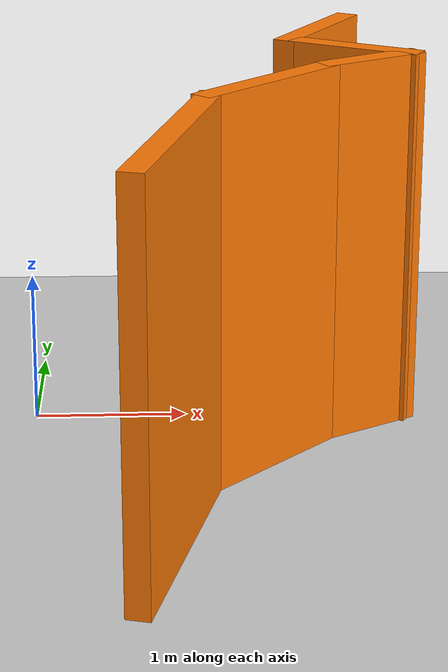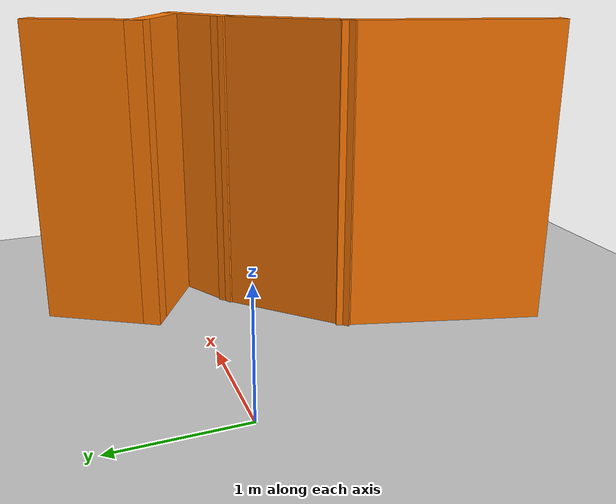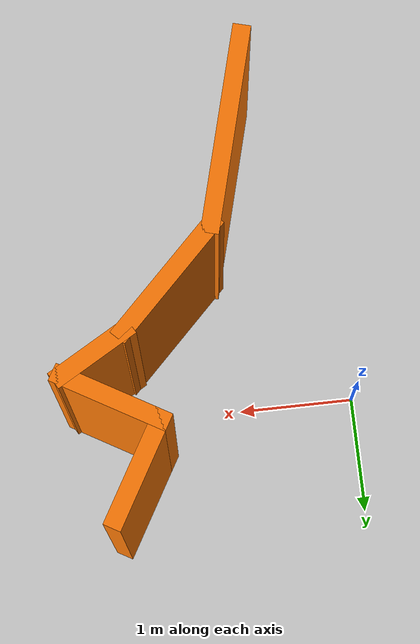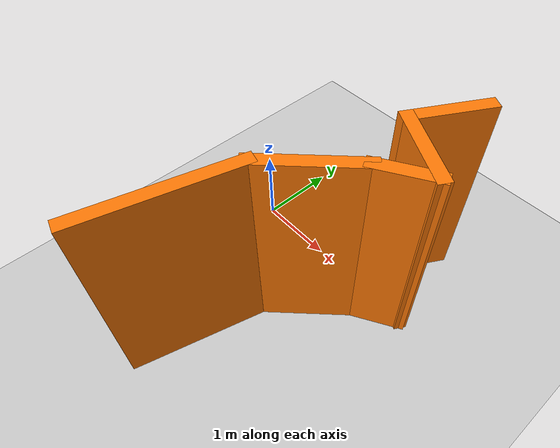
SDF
<sdf version="1.7">
 <world name="default">
  <light name="sun" type="directional">
   <pose>0 0 10 0 -0 0</pose>
   <diffuse>0.8 0.8 0.8 1</diffuse>
   <specular>0.2 0.2 0.2 1</specular>
   <attenuation>
    <range>1000</range>
    <constant>0.9</constant>
    <linear>0.01</linear>
    <quadratic>0.001</quadratic>
   </attenuation>
   <direction>-0.5 0.1 -0.9</direction>
   <spot><inner_angle>0</inner_angle><outer_angle>0</outer_angle><falloff>0</falloff></spot>
  </light>
  <model name="ground_plane">
   <static>1</static>
   <link name="link">
    <collision name="collision">
     <geometry><plane><normal>0 0 1</normal><size>100 100</size></plane></geometry>
     <surface>
      <contact><collide_bitmask>65535</collide_bitmask></contact>
      <friction><ode><mu>100</mu><mu2>50</mu2></ode></friction>
     </surface>
    </collision>
    <visual name="visual">
     <cast_shadows>0</cast_shadows>
     <geometry><plane><normal>0 0 1</normal><size>100 100</size></plane></geometry>
     <material>
      <script><uri>file://media/materials/scripts/gazebo.material</uri><name>Gazebo/Grey</name></script>
     </material>
    </visual>
   </link>
  </model>
  <gravity>0 0 -9.8</gravity>
  <magnetic_field>6e-06 2.3e-05 -4.2e-05</magnetic_field>
  <atmosphere type="adiabatic"/>
  <physics type="ode">
   <max_step_size>0.001</max_step_size>
   <real_time_factor>1</real_time_factor>
   <real_time_update_rate>1000</real_time_update_rate>
  </physics>
  <scene><ambient>0.4 0.4 0.4 1</ambient><background>0.7 0.7 0.7 1</background><shadows>1</shadows></scene>
  <spherical_coordinates>
   <surface_model>EARTH_WGS84</surface_model>
   <latitude_deg>0</latitude_deg>
   <longitude_deg>0</longitude_deg>
   <elevation>0</elevation>
   <heading_deg>0</heading_deg>
  </spherical_coordinates>
  <model name="map">
   <pose>1.267 -0.792492 0 0 -0 0</pose>
   <link name="Wall_1">
    <collision name="Wall_1_Collision">
     <geometry><box><size>1.75 0.15 2.5</size></box></geometry>
     <pose>0 0 1.25 0 -0 0</pose>
    </collision>
    <visual name="Wall_1_Visual">
     <pose>0 0 1.25 0 -0 0</pose>
     <geometry><box><size>1.75 0.15 2.5</size></box></geometry>
     <material>
      <script><uri>file://media/materials/scripts/gazebo.material</uri><name>Gazebo/Grey</name></script>
      <ambient>0.996078 0.47451 0.0196078 1</ambient>
     </material>
     <meta><layer>0</layer></meta>
    </visual>
    <pose>-0.339942 -1.12477 0 0 -0 1.309</pose>
   </link>
   <link name="Wall_2">
    <collision name="Wall_2_Collision">
     <geometry><box><size>1.25 0.15 2.5</size></box></geometry>
     <pose>0 0 1.25 0 -0 0</pose>
    </collision>
    <visual name="Wall_2_Visual">
     <pose>0 0 1.25 0 -0 0</pose>
     <geometry><box><size>1.25 0.15 2.5</size></box></geometry>
     <material>
      <script><uri>file://media/materials/scripts/gazebo.material</uri><name>Gazebo/Grey</name></script>
      <ambient>0.996078 0.47451 0.0196078 1</ambient>
     </material>
     <meta><layer>0</layer></meta>
    </visual>
    <pose>0.256022 0.036882 0 0 -0 0.785398</pose>
   </link>
   <link name="Wall_3">
    <collision name="Wall_3_Collision">
     <geometry><box><size>0.75 0.15 2.5</size></box></geometry>
     <pose>0 0 1.25 0 -0 0</pose>
    </collision>
    <visual name="Wall_3_Visual">
     <pose>0 0 1.25 0 -0 0</pose>
     <geometry><box><size>0.75 0.15 2.5</size></box></geometry>
     <material>
      <script><uri>file://media/materials/scripts/gazebo.material</uri><name>Gazebo/Grey</name></script>
      <ambient>0.996078 0.47451 0.0196078 1</ambient>
     </material>
     <meta><layer>0</layer></meta>
    </visual>
    <pose>0.904738 0.575791 0 0 -0 0.523599</pose>
   </link>
   <link name="Wall_5">
    <collision name="Wall_5_Collision">
     <geometry><box><size>1 0.15 2.5</size></box></geometry>
     <pose>0 0 1.25 0 -0 0</pose>
    </collision>
    <visual name="Wall_5_Visual">
     <pose>0 0 1.25 0 -0 0</pose>
     <geometry><box><size>1 0.15 2.5</size></box></geometry>
     <material>
      <script><uri>file://media/materials/scripts/gazebo.material</uri><name>Gazebo/Grey</name></script>
      <ambient>0.996078 0.47451 0.0196078 1</ambient>
     </material>
     <meta><layer>0</layer></meta>
    </visual>
    <pose>0.796485 0.938291 0 0 -0 2.61799</pose>
   </link>
   <link name="Wall_6">
    <collision name="Wall_6_Collision">
     <geometry><box><size>1 0.15 2.5</size></box></geometry>
     <pose>0 0 1.25 0 -0 0</pose>
    </collision>
    <visual name="Wall_6_Visual">
     <pose>0 0 1.25 0 -0 0</pose>
     <geometry><box><size>1 0.15 2.5</size></box></geometry>
     <material>
      <script><uri>file://media/materials/scripts/gazebo.material</uri><name>Gazebo/Grey</name></script>
      <ambient>0.996078 0.47451 0.0196078 1</ambient>
     </material>
     <meta><layer>0</layer></meta>
    </visual>
    <pose>0.640924 1.51885 0 0 -0 1.0472</pose>
   </link>
   <static>1</static>
  </model>
 </world>
</sdf>
